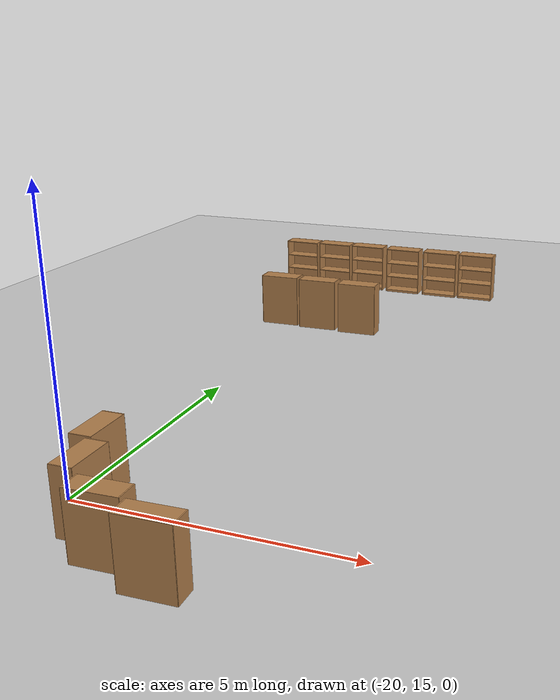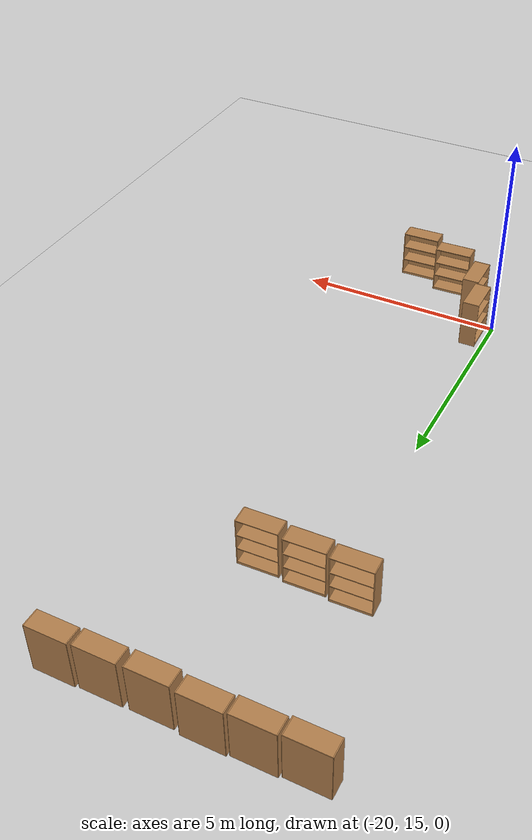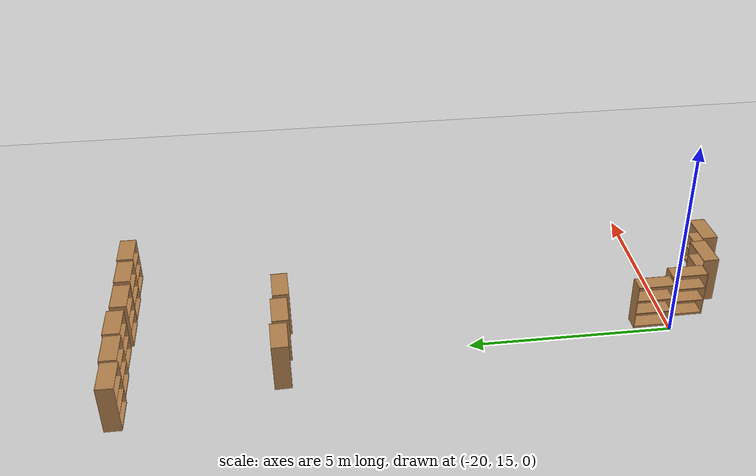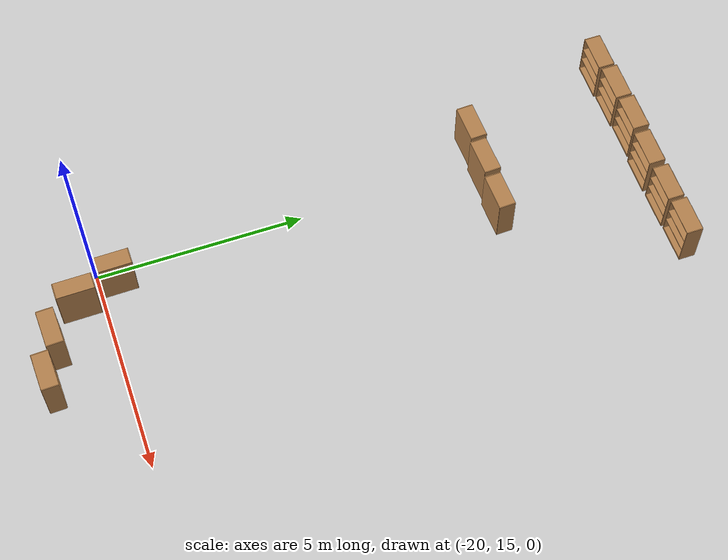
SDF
<sdf version="1.6">
 <world name="default">
  <model name="ground_plane">
   <static>1</static>
   <link name="link">
    <collision name="collision">
     <geometry><plane><normal>0 0 1</normal><size>100 100</size></plane></geometry>
     <surface>
      <contact><collide_bitmask>65535</collide_bitmask></contact>
      <friction><ode><mu>100</mu><mu2>50</mu2></ode></friction>
     </surface>
    </collision>
    <visual name="visual">
     <cast_shadows>0</cast_shadows>
     <geometry><plane><normal>0 0 1</normal><size>100 100</size></plane></geometry>
     <material>
      <script><uri>file://media/materials/scripts/gazebo.material</uri><name>Gazebo/Grey</name></script>
     </material>
    </visual>
   </link>
  </model>
  <model name="bookshelf_clone">
   <static>1</static>
   <link name="link">
    <inertial><mass>1</mass></inertial>
    <collision name="back">
     <pose>0 0.005 0.6 0 -0 0</pose>
     <geometry><box><size>0.9 0.01 1.2</size></box></geometry>
    </collision>
    <visual name="visual1">
     <pose>0 0.005 0.6 0 -0 0</pose>
     <geometry><box><size>0.9 0.01 1.2</size></box></geometry>
     <material>
      <script><uri>file://media/materials/scripts/gazebo.material</uri><name>Gazebo/Wood</name></script>
     </material>
    </visual>
    <collision name="left_side">
     <pose>0.45 -0.195 0.6 0 -0 0</pose>
     <geometry><box><size>0.02 0.4 1.2</size></box></geometry>
    </collision>
    <visual name="visual2">
     <pose>0.45 -0.195 0.6 0 -0 0</pose>
     <geometry><box><size>0.02 0.4 1.2</size></box></geometry>
     <material>
      <script><uri>file://media/materials/scripts/gazebo.material</uri><name>Gazebo/Wood</name></script>
     </material>
    </visual>
    <collision name="right_side">
     <pose>-0.45 -0.195 0.6 0 -0 0</pose>
     <geometry><box><size>0.02 0.4 1.2</size></box></geometry>
    </collision>
    <visual name="visual3">
     <pose>-0.45 -0.195 0.6 0 -0 0</pose>
     <geometry><box><size>0.02 0.4 1.2</size></box></geometry>
     <material>
      <script><uri>file://media/materials/scripts/gazebo.material</uri><name>Gazebo/Wood</name></script>
     </material>
    </visual>
    <collision name="bottom">
     <pose>0 -0.195 0.03 0 -0 0</pose>
     <geometry><box><size>0.88 0.4 0.06</size></box></geometry>
    </collision>
    <visual name="visual4">
     <pose>0 -0.195 0.03 0 -0 0</pose>
     <geometry><box><size>0.88 0.4 0.06</size></box></geometry>
     <material>
      <script><uri>file://media/materials/scripts/gazebo.material</uri><name>Gazebo/Wood</name></script>
     </material>
    </visual>
    <collision name="top">
     <pose>0 -0.195 1.19 0 -0 0</pose>
     <geometry><box><size>0.88 0.4 0.02</size></box></geometry>
    </collision>
    <visual name="visual5">
     <pose>0 -0.195 1.19 0 -0 0</pose>
     <geometry><box><size>0.88 0.4 0.02</size></box></geometry>
     <material>
      <script><uri>file://media/materials/scripts/gazebo.material</uri><name>Gazebo/Wood</name></script>
     </material>
    </visual>
    <collision name="low_shelf">
     <pose>0 -0.195 0.43 0 -0 0</pose>
     <geometry><box><size>0.88 0.4 0.02</size></box></geometry>
    </collision>
    <visual name="visual6">
     <pose>0 -0.195 0.43 0 -0 0</pose>
     <geometry><box><size>0.88 0.4 0.02</size></box></geometry>
     <material>
      <script><uri>file://media/materials/scripts/gazebo.material</uri><name>Gazebo/Wood</name></script>
     </material>
    </visual>
    <collision name="high_shelf">
     <pose>0 -0.195 0.8 0 -0 0</pose>
     <geometry><box><size>0.88 0.4 0.02</size></box></geometry>
    </collision>
    <visual name="visual7">
     <pose>0 -0.195 0.8 0 -0 0</pose>
     <geometry><box><size>0.88 0.4 0.02</size></box></geometry>
     <material>
      <script><uri>file://media/materials/scripts/gazebo.material</uri><name>Gazebo/Wood</name></script>
     </material>
    </visual>
   </link>
   <pose>-18.5237 28.408 0 0 -0 0</pose>
  </model>
  <model name="bookshelf_clone_0">
   <static>1</static>
   <link name="link">
    <inertial><mass>1</mass></inertial>
    <collision name="back">
     <pose>0 0.005 0.6 0 -0 0</pose>
     <geometry><box><size>0.9 0.01 1.2</size></box></geometry>
    </collision>
    <visual name="visual1">
     <pose>0 0.005 0.6 0 -0 0</pose>
     <geometry><box><size>0.9 0.01 1.2</size></box></geometry>
     <material>
      <script><uri>file://media/materials/scripts/gazebo.material</uri><name>Gazebo/Wood</name></script>
     </material>
    </visual>
    <collision name="left_side">
     <pose>0.45 -0.195 0.6 0 -0 0</pose>
     <geometry><box><size>0.02 0.4 1.2</size></box></geometry>
    </collision>
    <visual name="visual2">
     <pose>0.45 -0.195 0.6 0 -0 0</pose>
     <geometry><box><size>0.02 0.4 1.2</size></box></geometry>
     <material>
      <script><uri>file://media/materials/scripts/gazebo.material</uri><name>Gazebo/Wood</name></script>
     </material>
    </visual>
    <collision name="right_side">
     <pose>-0.45 -0.195 0.6 0 -0 0</pose>
     <geometry><box><size>0.02 0.4 1.2</size></box></geometry>
    </collision>
    <visual name="visual3">
     <pose>-0.45 -0.195 0.6 0 -0 0</pose>
     <geometry><box><size>0.02 0.4 1.2</size></box></geometry>
     <material>
      <script><uri>file://media/materials/scripts/gazebo.material</uri><name>Gazebo/Wood</name></script>
     </material>
    </visual>
    <collision name="bottom">
     <pose>0 -0.195 0.03 0 -0 0</pose>
     <geometry><box><size>0.88 0.4 0.06</size></box></geometry>
    </collision>
    <visual name="visual4">
     <pose>0 -0.195 0.03 0 -0 0</pose>
     <geometry><box><size>0.88 0.4 0.06</size></box></geometry>
     <material>
      <script><uri>file://media/materials/scripts/gazebo.material</uri><name>Gazebo/Wood</name></script>
     </material>
    </visual>
    <collision name="top">
     <pose>0 -0.195 1.19 0 -0 0</pose>
     <geometry><box><size>0.88 0.4 0.02</size></box></geometry>
    </collision>
    <visual name="visual5">
     <pose>0 -0.195 1.19 0 -0 0</pose>
     <geometry><box><size>0.88 0.4 0.02</size></box></geometry>
     <material>
      <script><uri>file://media/materials/scripts/gazebo.material</uri><name>Gazebo/Wood</name></script>
     </material>
    </visual>
    <collision name="low_shelf">
     <pose>0 -0.195 0.43 0 -0 0</pose>
     <geometry><box><size>0.88 0.4 0.02</size></box></geometry>
    </collision>
    <visual name="visual6">
     <pose>0 -0.195 0.43 0 -0 0</pose>
     <geometry><box><size>0.88 0.4 0.02</size></box></geometry>
     <material>
      <script><uri>file://media/materials/scripts/gazebo.material</uri><name>Gazebo/Wood</name></script>
     </material>
    </visual>
    <collision name="high_shelf">
     <pose>0 -0.195 0.8 0 -0 0</pose>
     <geometry><box><size>0.88 0.4 0.02</size></box></geometry>
    </collision>
    <visual name="visual7">
     <pose>0 -0.195 0.8 0 -0 0</pose>
     <geometry><box><size>0.88 0.4 0.02</size></box></geometry>
     <material>
      <script><uri>file://media/materials/scripts/gazebo.material</uri><name>Gazebo/Wood</name></script>
     </material>
    </visual>
   </link>
   <pose>-19.5618 28.4514 0 0 -0 0</pose>
  </model>
  <model name="bookshelf_clone_1">
   <static>1</static>
   <link name="link">
    <inertial><mass>1</mass></inertial>
    <collision name="back">
     <pose>0 0.005 0.6 0 -0 0</pose>
     <geometry><box><size>0.9 0.01 1.2</size></box></geometry>
    </collision>
    <visual name="visual1">
     <pose>0 0.005 0.6 0 -0 0</pose>
     <geometry><box><size>0.9 0.01 1.2</size></box></geometry>
     <material>
      <script><uri>file://media/materials/scripts/gazebo.material</uri><name>Gazebo/Wood</name></script>
     </material>
    </visual>
    <collision name="left_side">
     <pose>0.45 -0.195 0.6 0 -0 0</pose>
     <geometry><box><size>0.02 0.4 1.2</size></box></geometry>
    </collision>
    <visual name="visual2">
     <pose>0.45 -0.195 0.6 0 -0 0</pose>
     <geometry><box><size>0.02 0.4 1.2</size></box></geometry>
     <material>
      <script><uri>file://media/materials/scripts/gazebo.material</uri><name>Gazebo/Wood</name></script>
     </material>
    </visual>
    <collision name="right_side">
     <pose>-0.45 -0.195 0.6 0 -0 0</pose>
     <geometry><box><size>0.02 0.4 1.2</size></box></geometry>
    </collision>
    <visual name="visual3">
     <pose>-0.45 -0.195 0.6 0 -0 0</pose>
     <geometry><box><size>0.02 0.4 1.2</size></box></geometry>
     <material>
      <script><uri>file://media/materials/scripts/gazebo.material</uri><name>Gazebo/Wood</name></script>
     </material>
    </visual>
    <collision name="bottom">
     <pose>0 -0.195 0.03 0 -0 0</pose>
     <geometry><box><size>0.88 0.4 0.06</size></box></geometry>
    </collision>
    <visual name="visual4">
     <pose>0 -0.195 0.03 0 -0 0</pose>
     <geometry><box><size>0.88 0.4 0.06</size></box></geometry>
     <material>
      <script><uri>file://media/materials/scripts/gazebo.material</uri><name>Gazebo/Wood</name></script>
     </material>
    </visual>
    <collision name="top">
     <pose>0 -0.195 1.19 0 -0 0</pose>
     <geometry><box><size>0.88 0.4 0.02</size></box></geometry>
    </collision>
    <visual name="visual5">
     <pose>0 -0.195 1.19 0 -0 0</pose>
     <geometry><box><size>0.88 0.4 0.02</size></box></geometry>
     <material>
      <script><uri>file://media/materials/scripts/gazebo.material</uri><name>Gazebo/Wood</name></script>
     </material>
    </visual>
    <collision name="low_shelf">
     <pose>0 -0.195 0.43 0 -0 0</pose>
     <geometry><box><size>0.88 0.4 0.02</size></box></geometry>
    </collision>
    <visual name="visual6">
     <pose>0 -0.195 0.43 0 -0 0</pose>
     <geometry><box><size>0.88 0.4 0.02</size></box></geometry>
     <material>
      <script><uri>file://media/materials/scripts/gazebo.material</uri><name>Gazebo/Wood</name></script>
     </material>
    </visual>
    <collision name="high_shelf">
     <pose>0 -0.195 0.8 0 -0 0</pose>
     <geometry><box><size>0.88 0.4 0.02</size></box></geometry>
    </collision>
    <visual name="visual7">
     <pose>0 -0.195 0.8 0 -0 0</pose>
     <geometry><box><size>0.88 0.4 0.02</size></box></geometry>
     <material>
      <script><uri>file://media/materials/scripts/gazebo.material</uri><name>Gazebo/Wood</name></script>
     </material>
    </visual>
   </link>
   <pose>-20.5209 28.4151 0 0 -0 0</pose>
  </model>
  <model name="bookshelf_clone_2">
   <static>1</static>
   <link name="link">
    <inertial><mass>1</mass></inertial>
    <collision name="back">
     <pose>0 0.005 0.6 0 -0 0</pose>
     <geometry><box><size>0.9 0.01 1.2</size></box></geometry>
    </collision>
    <visual name="visual1">
     <pose>0 0.005 0.6 0 -0 0</pose>
     <geometry><box><size>0.9 0.01 1.2</size></box></geometry>
     <material>
      <script><uri>file://media/materials/scripts/gazebo.material</uri><name>Gazebo/Wood</name></script>
     </material>
    </visual>
    <collision name="left_side">
     <pose>0.45 -0.195 0.6 0 -0 0</pose>
     <geometry><box><size>0.02 0.4 1.2</size></box></geometry>
    </collision>
    <visual name="visual2">
     <pose>0.45 -0.195 0.6 0 -0 0</pose>
     <geometry><box><size>0.02 0.4 1.2</size></box></geometry>
     <material>
      <script><uri>file://media/materials/scripts/gazebo.material</uri><name>Gazebo/Wood</name></script>
     </material>
    </visual>
    <collision name="right_side">
     <pose>-0.45 -0.195 0.6 0 -0 0</pose>
     <geometry><box><size>0.02 0.4 1.2</size></box></geometry>
    </collision>
    <visual name="visual3">
     <pose>-0.45 -0.195 0.6 0 -0 0</pose>
     <geometry><box><size>0.02 0.4 1.2</size></box></geometry>
     <material>
      <script><uri>file://media/materials/scripts/gazebo.material</uri><name>Gazebo/Wood</name></script>
     </material>
    </visual>
    <collision name="bottom">
     <pose>0 -0.195 0.03 0 -0 0</pose>
     <geometry><box><size>0.88 0.4 0.06</size></box></geometry>
    </collision>
    <visual name="visual4">
     <pose>0 -0.195 0.03 0 -0 0</pose>
     <geometry><box><size>0.88 0.4 0.06</size></box></geometry>
     <material>
      <script><uri>file://media/materials/scripts/gazebo.material</uri><name>Gazebo/Wood</name></script>
     </material>
    </visual>
    <collision name="top">
     <pose>0 -0.195 1.19 0 -0 0</pose>
     <geometry><box><size>0.88 0.4 0.02</size></box></geometry>
    </collision>
    <visual name="visual5">
     <pose>0 -0.195 1.19 0 -0 0</pose>
     <geometry><box><size>0.88 0.4 0.02</size></box></geometry>
     <material>
      <script><uri>file://media/materials/scripts/gazebo.material</uri><name>Gazebo/Wood</name></script>
     </material>
    </visual>
    <collision name="low_shelf">
     <pose>0 -0.195 0.43 0 -0 0</pose>
     <geometry><box><size>0.88 0.4 0.02</size></box></geometry>
    </collision>
    <visual name="visual6">
     <pose>0 -0.195 0.43 0 -0 0</pose>
     <geometry><box><size>0.88 0.4 0.02</size></box></geometry>
     <material>
      <script><uri>file://media/materials/scripts/gazebo.material</uri><name>Gazebo/Wood</name></script>
     </material>
    </visual>
    <collision name="high_shelf">
     <pose>0 -0.195 0.8 0 -0 0</pose>
     <geometry><box><size>0.88 0.4 0.02</size></box></geometry>
    </collision>
    <visual name="visual7">
     <pose>0 -0.195 0.8 0 -0 0</pose>
     <geometry><box><size>0.88 0.4 0.02</size></box></geometry>
     <material>
      <script><uri>file://media/materials/scripts/gazebo.material</uri><name>Gazebo/Wood</name></script>
     </material>
    </visual>
   </link>
   <pose>-21.4777 28.3729 0 0 -0 0</pose>
  </model>
  <model name="bookshelf_clone_2_clone">
   <static>1</static>
   <link name="link">
    <inertial><mass>1</mass></inertial>
    <collision name="back">
     <pose>0 0.005 0.6 0 -0 0</pose>
     <geometry><box><size>0.9 0.01 1.2</size></box></geometry>
    </collision>
    <visual name="visual1">
     <pose>0 0.005 0.6 0 -0 0</pose>
     <geometry><box><size>0.9 0.01 1.2</size></box></geometry>
     <material>
      <script><uri>file://media/materials/scripts/gazebo.material</uri><name>Gazebo/Wood</name></script>
     </material>
    </visual>
    <collision name="left_side">
     <pose>0.45 -0.195 0.6 0 -0 0</pose>
     <geometry><box><size>0.02 0.4 1.2</size></box></geometry>
    </collision>
    <visual name="visual2">
     <pose>0.45 -0.195 0.6 0 -0 0</pose>
     <geometry><box><size>0.02 0.4 1.2</size></box></geometry>
     <material>
      <script><uri>file://media/materials/scripts/gazebo.material</uri><name>Gazebo/Wood</name></script>
     </material>
    </visual>
    <collision name="right_side">
     <pose>-0.45 -0.195 0.6 0 -0 0</pose>
     <geometry><box><size>0.02 0.4 1.2</size></box></geometry>
    </collision>
    <visual name="visual3">
     <pose>-0.45 -0.195 0.6 0 -0 0</pose>
     <geometry><box><size>0.02 0.4 1.2</size></box></geometry>
     <material>
      <script><uri>file://media/materials/scripts/gazebo.material</uri><name>Gazebo/Wood</name></script>
     </material>
    </visual>
    <collision name="bottom">
     <pose>0 -0.195 0.03 0 -0 0</pose>
     <geometry><box><size>0.88 0.4 0.06</size></box></geometry>
    </collision>
    <visual name="visual4">
     <pose>0 -0.195 0.03 0 -0 0</pose>
     <geometry><box><size>0.88 0.4 0.06</size></box></geometry>
     <material>
      <script><uri>file://media/materials/scripts/gazebo.material</uri><name>Gazebo/Wood</name></script>
     </material>
    </visual>
    <collision name="top">
     <pose>0 -0.195 1.19 0 -0 0</pose>
     <geometry><box><size>0.88 0.4 0.02</size></box></geometry>
    </collision>
    <visual name="visual5">
     <pose>0 -0.195 1.19 0 -0 0</pose>
     <geometry><box><size>0.88 0.4 0.02</size></box></geometry>
     <material>
      <script><uri>file://media/materials/scripts/gazebo.material</uri><name>Gazebo/Wood</name></script>
     </material>
    </visual>
    <collision name="low_shelf">
     <pose>0 -0.195 0.43 0 -0 0</pose>
     <geometry><box><size>0.88 0.4 0.02</size></box></geometry>
    </collision>
    <visual name="visual6">
     <pose>0 -0.195 0.43 0 -0 0</pose>
     <geometry><box><size>0.88 0.4 0.02</size></box></geometry>
     <material>
      <script><uri>file://media/materials/scripts/gazebo.material</uri><name>Gazebo/Wood</name></script>
     </material>
    </visual>
    <collision name="high_shelf">
     <pose>0 -0.195 0.8 0 -0 0</pose>
     <geometry><box><size>0.88 0.4 0.02</size></box></geometry>
    </collision>
    <visual name="visual7">
     <pose>0 -0.195 0.8 0 -0 0</pose>
     <geometry><box><size>0.88 0.4 0.02</size></box></geometry>
     <material>
      <script><uri>file://media/materials/scripts/gazebo.material</uri><name>Gazebo/Wood</name></script>
     </material>
    </visual>
   </link>
   <pose>-20.542 24.2966 0 0 0 -3.10717</pose>
  </model>
  <model name="bookshelf_clone_2_clone_clone">
   <static>1</static>
   <link name="link">
    <inertial><mass>1</mass></inertial>
    <collision name="back">
     <pose>0 0.005 0.6 0 -0 0</pose>
     <geometry><box><size>0.9 0.01 1.2</size></box></geometry>
    </collision>
    <visual name="visual1">
     <pose>0 0.005 0.6 0 -0 0</pose>
     <geometry><box><size>0.9 0.01 1.2</size></box></geometry>
     <material>
      <script><uri>file://media/materials/scripts/gazebo.material</uri><name>Gazebo/Wood</name></script>
     </material>
    </visual>
    <collision name="left_side">
     <pose>0.45 -0.195 0.6 0 -0 0</pose>
     <geometry><box><size>0.02 0.4 1.2</size></box></geometry>
    </collision>
    <visual name="visual2">
     <pose>0.45 -0.195 0.6 0 -0 0</pose>
     <geometry><box><size>0.02 0.4 1.2</size></box></geometry>
     <material>
      <script><uri>file://media/materials/scripts/gazebo.material</uri><name>Gazebo/Wood</name></script>
     </material>
    </visual>
    <collision name="right_side">
     <pose>-0.45 -0.195 0.6 0 -0 0</pose>
     <geometry><box><size>0.02 0.4 1.2</size></box></geometry>
    </collision>
    <visual name="visual3">
     <pose>-0.45 -0.195 0.6 0 -0 0</pose>
     <geometry><box><size>0.02 0.4 1.2</size></box></geometry>
     <material>
      <script><uri>file://media/materials/scripts/gazebo.material</uri><name>Gazebo/Wood</name></script>
     </material>
    </visual>
    <collision name="bottom">
     <pose>0 -0.195 0.03 0 -0 0</pose>
     <geometry><box><size>0.88 0.4 0.06</size></box></geometry>
    </collision>
    <visual name="visual4">
     <pose>0 -0.195 0.03 0 -0 0</pose>
     <geometry><box><size>0.88 0.4 0.06</size></box></geometry>
     <material>
      <script><uri>file://media/materials/scripts/gazebo.material</uri><name>Gazebo/Wood</name></script>
     </material>
    </visual>
    <collision name="top">
     <pose>0 -0.195 1.19 0 -0 0</pose>
     <geometry><box><size>0.88 0.4 0.02</size></box></geometry>
    </collision>
    <visual name="visual5">
     <pose>0 -0.195 1.19 0 -0 0</pose>
     <geometry><box><size>0.88 0.4 0.02</size></box></geometry>
     <material>
      <script><uri>file://media/materials/scripts/gazebo.material</uri><name>Gazebo/Wood</name></script>
     </material>
    </visual>
    <collision name="low_shelf">
     <pose>0 -0.195 0.43 0 -0 0</pose>
     <geometry><box><size>0.88 0.4 0.02</size></box></geometry>
    </collision>
    <visual name="visual6">
     <pose>0 -0.195 0.43 0 -0 0</pose>
     <geometry><box><size>0.88 0.4 0.02</size></box></geometry>
     <material>
      <script><uri>file://media/materials/scripts/gazebo.material</uri><name>Gazebo/Wood</name></script>
     </material>
    </visual>
    <collision name="high_shelf">
     <pose>0 -0.195 0.8 0 -0 0</pose>
     <geometry><box><size>0.88 0.4 0.02</size></box></geometry>
    </collision>
    <visual name="visual7">
     <pose>0 -0.195 0.8 0 -0 0</pose>
     <geometry><box><size>0.88 0.4 0.02</size></box></geometry>
     <material>
      <script><uri>file://media/materials/scripts/gazebo.material</uri><name>Gazebo/Wood</name></script>
     </material>
    </visual>
   </link>
   <pose>-19.5517 24.2685 0 0 0 -3.10717</pose>
  </model>
  <model name="bookshelf_clone_2_clone_clone_0">
   <static>1</static>
   <link name="link">
    <inertial><mass>1</mass></inertial>
    <collision name="back">
     <pose>0 0.005 0.6 0 -0 0</pose>
     <geometry><box><size>0.9 0.01 1.2</size></box></geometry>
    </collision>
    <visual name="visual1">
     <pose>0 0.005 0.6 0 -0 0</pose>
     <geometry><box><size>0.9 0.01 1.2</size></box></geometry>
     <material>
      <script><uri>file://media/materials/scripts/gazebo.material</uri><name>Gazebo/Wood</name></script>
     </material>
    </visual>
    <collision name="left_side">
     <pose>0.45 -0.195 0.6 0 -0 0</pose>
     <geometry><box><size>0.02 0.4 1.2</size></box></geometry>
    </collision>
    <visual name="visual2">
     <pose>0.45 -0.195 0.6 0 -0 0</pose>
     <geometry><box><size>0.02 0.4 1.2</size></box></geometry>
     <material>
      <script><uri>file://media/materials/scripts/gazebo.material</uri><name>Gazebo/Wood</name></script>
     </material>
    </visual>
    <collision name="right_side">
     <pose>-0.45 -0.195 0.6 0 -0 0</pose>
     <geometry><box><size>0.02 0.4 1.2</size></box></geometry>
    </collision>
    <visual name="visual3">
     <pose>-0.45 -0.195 0.6 0 -0 0</pose>
     <geometry><box><size>0.02 0.4 1.2</size></box></geometry>
     <material>
      <script><uri>file://media/materials/scripts/gazebo.material</uri><name>Gazebo/Wood</name></script>
     </material>
    </visual>
    <collision name="bottom">
     <pose>0 -0.195 0.03 0 -0 0</pose>
     <geometry><box><size>0.88 0.4 0.06</size></box></geometry>
    </collision>
    <visual name="visual4">
     <pose>0 -0.195 0.03 0 -0 0</pose>
     <geometry><box><size>0.88 0.4 0.06</size></box></geometry>
     <material>
      <script><uri>file://media/materials/scripts/gazebo.material</uri><name>Gazebo/Wood</name></script>
     </material>
    </visual>
    <collision name="top">
     <pose>0 -0.195 1.19 0 -0 0</pose>
     <geometry><box><size>0.88 0.4 0.02</size></box></geometry>
    </collision>
    <visual name="visual5">
     <pose>0 -0.195 1.19 0 -0 0</pose>
     <geometry><box><size>0.88 0.4 0.02</size></box></geometry>
     <material>
      <script><uri>file://media/materials/scripts/gazebo.material</uri><name>Gazebo/Wood</name></script>
     </material>
    </visual>
    <collision name="low_shelf">
     <pose>0 -0.195 0.43 0 -0 0</pose>
     <geometry><box><size>0.88 0.4 0.02</size></box></geometry>
    </collision>
    <visual name="visual6">
     <pose>0 -0.195 0.43 0 -0 0</pose>
     <geometry><box><size>0.88 0.4 0.02</size></box></geometry>
     <material>
      <script><uri>file://media/materials/scripts/gazebo.material</uri><name>Gazebo/Wood</name></script>
     </material>
    </visual>
    <collision name="high_shelf">
     <pose>0 -0.195 0.8 0 -0 0</pose>
     <geometry><box><size>0.88 0.4 0.02</size></box></geometry>
    </collision>
    <visual name="visual7">
     <pose>0 -0.195 0.8 0 -0 0</pose>
     <geometry><box><size>0.88 0.4 0.02</size></box></geometry>
     <material>
      <script><uri>file://media/materials/scripts/gazebo.material</uri><name>Gazebo/Wood</name></script>
     </material>
    </visual>
   </link>
   <pose>-18.5314 24.2403 0 0 0 -3.10717</pose>
  </model>
  <model name="bookshelf_clone_2_clone_clone_0_clone_0">
   <static>1</static>
   <link name="link">
    <inertial><mass>1</mass></inertial>
    <collision name="back">
     <pose>0 0.005 0.6 0 -0 0</pose>
     <geometry><box><size>0.9 0.01 1.2</size></box></geometry>
    </collision>
    <visual name="visual1">
     <pose>0 0.005 0.6 0 -0 0</pose>
     <geometry><box><size>0.9 0.01 1.2</size></box></geometry>
     <material>
      <script><uri>file://media/materials/scripts/gazebo.material</uri><name>Gazebo/Wood</name></script>
     </material>
    </visual>
    <collision name="left_side">
     <pose>0.45 -0.195 0.6 0 -0 0</pose>
     <geometry><box><size>0.02 0.4 1.2</size></box></geometry>
    </collision>
    <visual name="visual2">
     <pose>0.45 -0.195 0.6 0 -0 0</pose>
     <geometry><box><size>0.02 0.4 1.2</size></box></geometry>
     <material>
      <script><uri>file://media/materials/scripts/gazebo.material</uri><name>Gazebo/Wood</name></script>
     </material>
    </visual>
    <collision name="right_side">
     <pose>-0.45 -0.195 0.6 0 -0 0</pose>
     <geometry><box><size>0.02 0.4 1.2</size></box></geometry>
    </collision>
    <visual name="visual3">
     <pose>-0.45 -0.195 0.6 0 -0 0</pose>
     <geometry><box><size>0.02 0.4 1.2</size></box></geometry>
     <material>
      <script><uri>file://media/materials/scripts/gazebo.material</uri><name>Gazebo/Wood</name></script>
     </material>
    </visual>
    <collision name="bottom">
     <pose>0 -0.195 0.03 0 -0 0</pose>
     <geometry><box><size>0.88 0.4 0.06</size></box></geometry>
    </collision>
    <visual name="visual4">
     <pose>0 -0.195 0.03 0 -0 0</pose>
     <geometry><box><size>0.88 0.4 0.06</size></box></geometry>
     <material>
      <script><uri>file://media/materials/scripts/gazebo.material</uri><name>Gazebo/Wood</name></script>
     </material>
    </visual>
    <collision name="top">
     <pose>0 -0.195 1.19 0 -0 0</pose>
     <geometry><box><size>0.88 0.4 0.02</size></box></geometry>
    </collision>
    <visual name="visual5">
     <pose>0 -0.195 1.19 0 -0 0</pose>
     <geometry><box><size>0.88 0.4 0.02</size></box></geometry>
     <material>
      <script><uri>file://media/materials/scripts/gazebo.material</uri><name>Gazebo/Wood</name></script>
     </material>
    </visual>
    <collision name="low_shelf">
     <pose>0 -0.195 0.43 0 -0 0</pose>
     <geometry><box><size>0.88 0.4 0.02</size></box></geometry>
    </collision>
    <visual name="visual6">
     <pose>0 -0.195 0.43 0 -0 0</pose>
     <geometry><box><size>0.88 0.4 0.02</size></box></geometry>
     <material>
      <script><uri>file://media/materials/scripts/gazebo.material</uri><name>Gazebo/Wood</name></script>
     </material>
    </visual>
    <collision name="high_shelf">
     <pose>0 -0.195 0.8 0 -0 0</pose>
     <geometry><box><size>0.88 0.4 0.02</size></box></geometry>
    </collision>
    <visual name="visual7">
     <pose>0 -0.195 0.8 0 -0 0</pose>
     <geometry><box><size>0.88 0.4 0.02</size></box></geometry>
     <material>
      <script><uri>file://media/materials/scripts/gazebo.material</uri><name>Gazebo/Wood</name></script>
     </material>
    </visual>
   </link>
   <pose>-17.438 13.1799 0 0 0 -3.10717</pose>
  </model>
  <model name="bookshelf_clone_2_clone_clone_0_clone_1">
   <static>1</static>
   <link name="link">
    <inertial><mass>1</mass></inertial>
    <collision name="back">
     <pose>0 0.005 0.6 0 -0 0</pose>
     <geometry><box><size>0.9 0.01 1.2</size></box></geometry>
    </collision>
    <visual name="visual1">
     <pose>0 0.005 0.6 0 -0 0</pose>
     <geometry><box><size>0.9 0.01 1.2</size></box></geometry>
     <material>
      <script><uri>file://media/materials/scripts/gazebo.material</uri><name>Gazebo/Wood</name></script>
     </material>
    </visual>
    <collision name="left_side">
     <pose>0.45 -0.195 0.6 0 -0 0</pose>
     <geometry><box><size>0.02 0.4 1.2</size></box></geometry>
    </collision>
    <visual name="visual2">
     <pose>0.45 -0.195 0.6 0 -0 0</pose>
     <geometry><box><size>0.02 0.4 1.2</size></box></geometry>
     <material>
      <script><uri>file://media/materials/scripts/gazebo.material</uri><name>Gazebo/Wood</name></script>
     </material>
    </visual>
    <collision name="right_side">
     <pose>-0.45 -0.195 0.6 0 -0 0</pose>
     <geometry><box><size>0.02 0.4 1.2</size></box></geometry>
    </collision>
    <visual name="visual3">
     <pose>-0.45 -0.195 0.6 0 -0 0</pose>
     <geometry><box><size>0.02 0.4 1.2</size></box></geometry>
     <material>
      <script><uri>file://media/materials/scripts/gazebo.material</uri><name>Gazebo/Wood</name></script>
     </material>
    </visual>
    <collision name="bottom">
     <pose>0 -0.195 0.03 0 -0 0</pose>
     <geometry><box><size>0.88 0.4 0.06</size></box></geometry>
    </collision>
    <visual name="visual4">
     <pose>0 -0.195 0.03 0 -0 0</pose>
     <geometry><box><size>0.88 0.4 0.06</size></box></geometry>
     <material>
      <script><uri>file://media/materials/scripts/gazebo.material</uri><name>Gazebo/Wood</name></script>
     </material>
    </visual>
    <collision name="top">
     <pose>0 -0.195 1.19 0 -0 0</pose>
     <geometry><box><size>0.88 0.4 0.02</size></box></geometry>
    </collision>
    <visual name="visual5">
     <pose>0 -0.195 1.19 0 -0 0</pose>
     <geometry><box><size>0.88 0.4 0.02</size></box></geometry>
     <material>
      <script><uri>file://media/materials/scripts/gazebo.material</uri><name>Gazebo/Wood</name></script>
     </material>
    </visual>
    <collision name="low_shelf">
     <pose>0 -0.195 0.43 0 -0 0</pose>
     <geometry><box><size>0.88 0.4 0.02</size></box></geometry>
    </collision>
    <visual name="visual6">
     <pose>0 -0.195 0.43 0 -0 0</pose>
     <geometry><box><size>0.88 0.4 0.02</size></box></geometry>
     <material>
      <script><uri>file://media/materials/scripts/gazebo.material</uri><name>Gazebo/Wood</name></script>
     </material>
    </visual>
    <collision name="high_shelf">
     <pose>0 -0.195 0.8 0 -0 0</pose>
     <geometry><box><size>0.88 0.4 0.02</size></box></geometry>
    </collision>
    <visual name="visual7">
     <pose>0 -0.195 0.8 0 -0 0</pose>
     <geometry><box><size>0.88 0.4 0.02</size></box></geometry>
     <material>
      <script><uri>file://media/materials/scripts/gazebo.material</uri><name>Gazebo/Wood</name></script>
     </material>
    </visual>
   </link>
   <pose>-18.4447 13.5241 0 0 0 -3.10717</pose>
  </model>
  <model name="bookshelf_clone_2_clone_clone_0_clone_3_clone_0_clone_1_clone_clone_0_clone_0_clone">
   <static>1</static>
   <link name="link">
    <inertial><mass>1</mass></inertial>
    <collision name="back">
     <pose>0 0.005 0.6 0 -0 0</pose>
     <geometry><box><size>0.9 0.01 1.2</size></box></geometry>
    </collision>
    <visual name="visual1">
     <pose>0 0.005 0.6 0 -0 0</pose>
     <geometry><box><size>0.9 0.01 1.2</size></box></geometry>
     <material>
      <script><uri>file://media/materials/scripts/gazebo.material</uri><name>Gazebo/Wood</name></script>
     </material>
    </visual>
    <collision name="left_side">
     <pose>0.45 -0.195 0.6 0 -0 0</pose>
     <geometry><box><size>0.02 0.4 1.2</size></box></geometry>
    </collision>
    <visual name="visual2">
     <pose>0.45 -0.195 0.6 0 -0 0</pose>
     <geometry><box><size>0.02 0.4 1.2</size></box></geometry>
     <material>
      <script><uri>file://media/materials/scripts/gazebo.material</uri><name>Gazebo/Wood</name></script>
     </material>
    </visual>
    <collision name="right_side">
     <pose>-0.45 -0.195 0.6 0 -0 0</pose>
     <geometry><box><size>0.02 0.4 1.2</size></box></geometry>
    </collision>
    <visual name="visual3">
     <pose>-0.45 -0.195 0.6 0 -0 0</pose>
     <geometry><box><size>0.02 0.4 1.2</size></box></geometry>
     <material>
      <script><uri>file://media/materials/scripts/gazebo.material</uri><name>Gazebo/Wood</name></script>
     </material>
    </visual>
    <collision name="bottom">
     <pose>0 -0.195 0.03 0 -0 0</pose>
     <geometry><box><size>0.88 0.4 0.06</size></box></geometry>
    </collision>
    <visual name="visual4">
     <pose>0 -0.195 0.03 0 -0 0</pose>
     <geometry><box><size>0.88 0.4 0.06</size></box></geometry>
     <material>
      <script><uri>file://media/materials/scripts/gazebo.material</uri><name>Gazebo/Wood</name></script>
     </material>
    </visual>
    <collision name="top">
     <pose>0 -0.195 1.19 0 -0 0</pose>
     <geometry><box><size>0.88 0.4 0.02</size></box></geometry>
    </collision>
    <visual name="visual5">
     <pose>0 -0.195 1.19 0 -0 0</pose>
     <geometry><box><size>0.88 0.4 0.02</size></box></geometry>
     <material>
      <script><uri>file://media/materials/scripts/gazebo.material</uri><name>Gazebo/Wood</name></script>
     </material>
    </visual>
    <collision name="low_shelf">
     <pose>0 -0.195 0.43 0 -0 0</pose>
     <geometry><box><size>0.88 0.4 0.02</size></box></geometry>
    </collision>
    <visual name="visual6">
     <pose>0 -0.195 0.43 0 -0 0</pose>
     <geometry><box><size>0.88 0.4 0.02</size></box></geometry>
     <material>
      <script><uri>file://media/materials/scripts/gazebo.material</uri><name>Gazebo/Wood</name></script>
     </material>
    </visual>
    <collision name="high_shelf">
     <pose>0 -0.195 0.8 0 -0 0</pose>
     <geometry><box><size>0.88 0.4 0.02</size></box></geometry>
    </collision>
    <visual name="visual7">
     <pose>0 -0.195 0.8 0 -0 0</pose>
     <geometry><box><size>0.88 0.4 0.02</size></box></geometry>
     <material>
      <script><uri>file://media/materials/scripts/gazebo.material</uri><name>Gazebo/Wood</name></script>
     </material>
    </visual>
   </link>
   <pose>-19.4433 15.4154 0 0 0 -1.56003</pose>
  </model>
  <model name="bookshelf_clone_2_clone_clone_0_clone_3_clone_0_clone_1_clone_clone_0_clone_0_clone_0">
   <static>1</static>
   <link name="link">
    <inertial><mass>1</mass></inertial>
    <collision name="back">
     <pose>0 0.005 0.6 0 -0 0</pose>
     <geometry><box><size>0.9 0.01 1.2</size></box></geometry>
    </collision>
    <visual name="visual1">
     <pose>0 0.005 0.6 0 -0 0</pose>
     <geometry><box><size>0.9 0.01 1.2</size></box></geometry>
     <material>
      <script><uri>file://media/materials/scripts/gazebo.material</uri><name>Gazebo/Wood</name></script>
     </material>
    </visual>
    <collision name="left_side">
     <pose>0.45 -0.195 0.6 0 -0 0</pose>
     <geometry><box><size>0.02 0.4 1.2</size></box></geometry>
    </collision>
    <visual name="visual2">
     <pose>0.45 -0.195 0.6 0 -0 0</pose>
     <geometry><box><size>0.02 0.4 1.2</size></box></geometry>
     <material>
      <script><uri>file://media/materials/scripts/gazebo.material</uri><name>Gazebo/Wood</name></script>
     </material>
    </visual>
    <collision name="right_side">
     <pose>-0.45 -0.195 0.6 0 -0 0</pose>
     <geometry><box><size>0.02 0.4 1.2</size></box></geometry>
    </collision>
    <visual name="visual3">
     <pose>-0.45 -0.195 0.6 0 -0 0</pose>
     <geometry><box><size>0.02 0.4 1.2</size></box></geometry>
     <material>
      <script><uri>file://media/materials/scripts/gazebo.material</uri><name>Gazebo/Wood</name></script>
     </material>
    </visual>
    <collision name="bottom">
     <pose>0 -0.195 0.03 0 -0 0</pose>
     <geometry><box><size>0.88 0.4 0.06</size></box></geometry>
    </collision>
    <visual name="visual4">
     <pose>0 -0.195 0.03 0 -0 0</pose>
     <geometry><box><size>0.88 0.4 0.06</size></box></geometry>
     <material>
      <script><uri>file://media/materials/scripts/gazebo.material</uri><name>Gazebo/Wood</name></script>
     </material>
    </visual>
    <collision name="top">
     <pose>0 -0.195 1.19 0 -0 0</pose>
     <geometry><box><size>0.88 0.4 0.02</size></box></geometry>
    </collision>
    <visual name="visual5">
     <pose>0 -0.195 1.19 0 -0 0</pose>
     <geometry><box><size>0.88 0.4 0.02</size></box></geometry>
     <material>
      <script><uri>file://media/materials/scripts/gazebo.material</uri><name>Gazebo/Wood</name></script>
     </material>
    </visual>
    <collision name="low_shelf">
     <pose>0 -0.195 0.43 0 -0 0</pose>
     <geometry><box><size>0.88 0.4 0.02</size></box></geometry>
    </collision>
    <visual name="visual6">
     <pose>0 -0.195 0.43 0 -0 0</pose>
     <geometry><box><size>0.88 0.4 0.02</size></box></geometry>
     <material>
      <script><uri>file://media/materials/scripts/gazebo.material</uri><name>Gazebo/Wood</name></script>
     </material>
    </visual>
    <collision name="high_shelf">
     <pose>0 -0.195 0.8 0 -0 0</pose>
     <geometry><box><size>0.88 0.4 0.02</size></box></geometry>
    </collision>
    <visual name="visual7">
     <pose>0 -0.195 0.8 0 -0 0</pose>
     <geometry><box><size>0.88 0.4 0.02</size></box></geometry>
     <material>
      <script><uri>file://media/materials/scripts/gazebo.material</uri><name>Gazebo/Wood</name></script>
     </material>
    </visual>
   </link>
   <pose>-19.091 14.4642 0 0 0 -1.56003</pose>
  </model>
  <model name="bookshelf_clone_clone">
   <static>1</static>
   <link name="link">
    <inertial><mass>1</mass></inertial>
    <collision name="back">
     <pose>0 0.005 0.6 0 -0 0</pose>
     <geometry><box><size>0.9 0.01 1.2</size></box></geometry>
    </collision>
    <visual name="visual1">
     <pose>0 0.005 0.6 0 -0 0</pose>
     <geometry><box><size>0.9 0.01 1.2</size></box></geometry>
     <material>
      <script><uri>file://media/materials/scripts/gazebo.material</uri><name>Gazebo/Wood</name></script>
     </material>
    </visual>
    <collision name="left_side">
     <pose>0.45 -0.195 0.6 0 -0 0</pose>
     <geometry><box><size>0.02 0.4 1.2</size></box></geometry>
    </collision>
    <visual name="visual2">
     <pose>0.45 -0.195 0.6 0 -0 0</pose>
     <geometry><box><size>0.02 0.4 1.2</size></box></geometry>
     <material>
      <script><uri>file://media/materials/scripts/gazebo.material</uri><name>Gazebo/Wood</name></script>
     </material>
    </visual>
    <collision name="right_side">
     <pose>-0.45 -0.195 0.6 0 -0 0</pose>
     <geometry><box><size>0.02 0.4 1.2</size></box></geometry>
    </collision>
    <visual name="visual3">
     <pose>-0.45 -0.195 0.6 0 -0 0</pose>
     <geometry><box><size>0.02 0.4 1.2</size></box></geometry>
     <material>
      <script><uri>file://media/materials/scripts/gazebo.material</uri><name>Gazebo/Wood</name></script>
     </material>
    </visual>
    <collision name="bottom">
     <pose>0 -0.195 0.03 0 -0 0</pose>
     <geometry><box><size>0.88 0.4 0.06</size></box></geometry>
    </collision>
    <visual name="visual4">
     <pose>0 -0.195 0.03 0 -0 0</pose>
     <geometry><box><size>0.88 0.4 0.06</size></box></geometry>
     <material>
      <script><uri>file://media/materials/scripts/gazebo.material</uri><name>Gazebo/Wood</name></script>
     </material>
    </visual>
    <collision name="top">
     <pose>0 -0.195 1.19 0 -0 0</pose>
     <geometry><box><size>0.88 0.4 0.02</size></box></geometry>
    </collision>
    <visual name="visual5">
     <pose>0 -0.195 1.19 0 -0 0</pose>
     <geometry><box><size>0.88 0.4 0.02</size></box></geometry>
     <material>
      <script><uri>file://media/materials/scripts/gazebo.material</uri><name>Gazebo/Wood</name></script>
     </material>
    </visual>
    <collision name="low_shelf">
     <pose>0 -0.195 0.43 0 -0 0</pose>
     <geometry><box><size>0.88 0.4 0.02</size></box></geometry>
    </collision>
    <visual name="visual6">
     <pose>0 -0.195 0.43 0 -0 0</pose>
     <geometry><box><size>0.88 0.4 0.02</size></box></geometry>
     <material>
      <script><uri>file://media/materials/scripts/gazebo.material</uri><name>Gazebo/Wood</name></script>
     </material>
    </visual>
    <collision name="high_shelf">
     <pose>0 -0.195 0.8 0 -0 0</pose>
     <geometry><box><size>0.88 0.4 0.02</size></box></geometry>
    </collision>
    <visual name="visual7">
     <pose>0 -0.195 0.8 0 -0 0</pose>
     <geometry><box><size>0.88 0.4 0.02</size></box></geometry>
     <material>
      <script><uri>file://media/materials/scripts/gazebo.material</uri><name>Gazebo/Wood</name></script>
     </material>
    </visual>
   </link>
   <pose>-17.4889 28.4249 0 0 -0 0</pose>
  </model>
  <model name="bookshelf_clone_clone_0">
   <static>1</static>
   <link name="link">
    <inertial><mass>1</mass></inertial>
    <collision name="back">
     <pose>0 0.005 0.6 0 -0 0</pose>
     <geometry><box><size>0.9 0.01 1.2</size></box></geometry>
    </collision>
    <visual name="visual1">
     <pose>0 0.005 0.6 0 -0 0</pose>
     <geometry><box><size>0.9 0.01 1.2</size></box></geometry>
     <material>
      <script><uri>file://media/materials/scripts/gazebo.material</uri><name>Gazebo/Wood</name></script>
     </material>
    </visual>
    <collision name="left_side">
     <pose>0.45 -0.195 0.6 0 -0 0</pose>
     <geometry><box><size>0.02 0.4 1.2</size></box></geometry>
    </collision>
    <visual name="visual2">
     <pose>0.45 -0.195 0.6 0 -0 0</pose>
     <geometry><box><size>0.02 0.4 1.2</size></box></geometry>
     <material>
      <script><uri>file://media/materials/scripts/gazebo.material</uri><name>Gazebo/Wood</name></script>
     </material>
    </visual>
    <collision name="right_side">
     <pose>-0.45 -0.195 0.6 0 -0 0</pose>
     <geometry><box><size>0.02 0.4 1.2</size></box></geometry>
    </collision>
    <visual name="visual3">
     <pose>-0.45 -0.195 0.6 0 -0 0</pose>
     <geometry><box><size>0.02 0.4 1.2</size></box></geometry>
     <material>
      <script><uri>file://media/materials/scripts/gazebo.material</uri><name>Gazebo/Wood</name></script>
     </material>
    </visual>
    <collision name="bottom">
     <pose>0 -0.195 0.03 0 -0 0</pose>
     <geometry><box><size>0.88 0.4 0.06</size></box></geometry>
    </collision>
    <visual name="visual4">
     <pose>0 -0.195 0.03 0 -0 0</pose>
     <geometry><box><size>0.88 0.4 0.06</size></box></geometry>
     <material>
      <script><uri>file://media/materials/scripts/gazebo.material</uri><name>Gazebo/Wood</name></script>
     </material>
    </visual>
    <collision name="top">
     <pose>0 -0.195 1.19 0 -0 0</pose>
     <geometry><box><size>0.88 0.4 0.02</size></box></geometry>
    </collision>
    <visual name="visual5">
     <pose>0 -0.195 1.19 0 -0 0</pose>
     <geometry><box><size>0.88 0.4 0.02</size></box></geometry>
     <material>
      <script><uri>file://media/materials/scripts/gazebo.material</uri><name>Gazebo/Wood</name></script>
     </material>
    </visual>
    <collision name="low_shelf">
     <pose>0 -0.195 0.43 0 -0 0</pose>
     <geometry><box><size>0.88 0.4 0.02</size></box></geometry>
    </collision>
    <visual name="visual6">
     <pose>0 -0.195 0.43 0 -0 0</pose>
     <geometry><box><size>0.88 0.4 0.02</size></box></geometry>
     <material>
      <script><uri>file://media/materials/scripts/gazebo.material</uri><name>Gazebo/Wood</name></script>
     </material>
    </visual>
    <collision name="high_shelf">
     <pose>0 -0.195 0.8 0 -0 0</pose>
     <geometry><box><size>0.88 0.4 0.02</size></box></geometry>
    </collision>
    <visual name="visual7">
     <pose>0 -0.195 0.8 0 -0 0</pose>
     <geometry><box><size>0.88 0.4 0.02</size></box></geometry>
     <material>
      <script><uri>file://media/materials/scripts/gazebo.material</uri><name>Gazebo/Wood</name></script>
     </material>
    </visual>
   </link>
   <pose>-16.5081 28.452 0 0 -0 0</pose>
  </model>
 </world>
</sdf>
